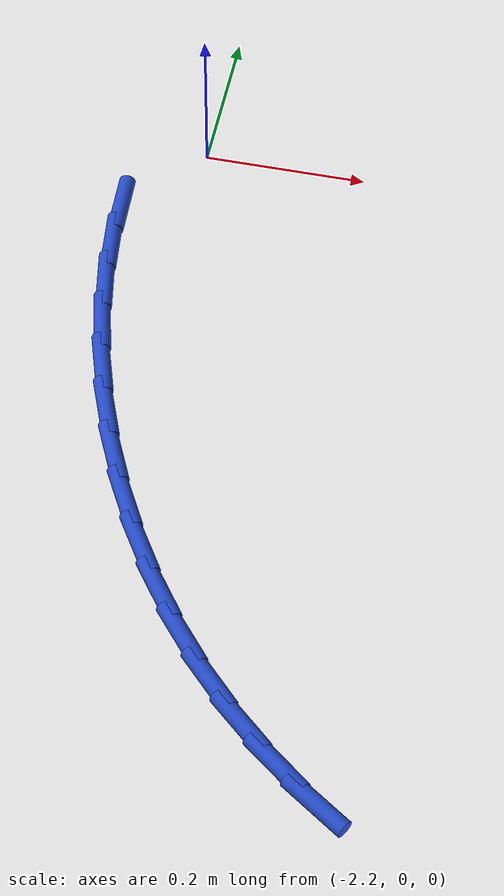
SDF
<sdf version="1.6">
 <world name="default">
  <model name="ground_plane">
   <static>1</static>
   <link name="link">
    <collision name="collision">
     <geometry><plane><normal>0 0 1</normal><size>100 100</size></plane></geometry>
     <surface><friction><ode><mu>100</mu><mu2>50</mu2></ode></friction></surface>
    </collision>
    <visual name="visual">
     <cast_shadows>0</cast_shadows>
     <geometry><plane><normal>0 0 1</normal><size>100 100</size></plane></geometry>
     <material>
      <script><uri>file://media/materials/scripts/gazebo.material</uri><name>Gazebo/WhiteGlow</name></script>
     </material>
    </visual>
   </link>
  </model>
  <model name="line">
   <link name="link_63">
    <pose>-2.2848982957113138 -0.10628251572030661 0.01 0 1.57 -1.5254522607305414</pose>
    <collision name="collision">
     <geometry><cylinder><radius>0.01</radius><length>0.08</length></cylinder></geometry>
    </collision>
    <visual name="visual">
     <material>
      <script><name>Gazebo/Blue</name><uri>file://media/materials/scripts/gazebo.material</uri></script>
     </material>
     <geometry><cylinder><radius>0.01</radius><length>0.08</length></cylinder></geometry>
    </visual>
   </link>
   <link name="link_64">
    <pose>-2.2821677250823136 -0.16646015706220527 0.01 0 1.57 -1.4539075155576662</pose>
    <collision name="collision">
     <geometry><cylinder><radius>0.01</radius><length>0.08</length></cylinder></geometry>
    </collision>
    <visual name="visual">
     <material>
      <script><name>Gazebo/Blue</name><uri>file://media/materials/scripts/gazebo.material</uri></script>
     </material>
     <geometry><cylinder><radius>0.01</radius><length>0.08</length></cylinder></geometry>
    </visual>
   </link>
   <link name="link_65">
    <pose>-2.275059396227622 -0.2269956828151566 0.01 0 1.57 -1.3856239007476459</pose>
    <collision name="collision">
     <geometry><cylinder><radius>0.01</radius><length>0.08</length></cylinder></geometry>
    </collision>
    <visual name="visual">
     <material>
      <script><name>Gazebo/Blue</name><uri>file://media/materials/scripts/gazebo.material</uri></script>
     </material>
     <geometry><cylinder><radius>0.01</radius><length>0.08</length></cylinder></geometry>
    </visual>
   </link>
   <link name="link_66">
    <pose>-2.263729057149864 -0.28748277028257113 0.01 0 1.57 -1.3197358555128753</pose>
    <collision name="collision">
     <geometry><cylinder><radius>0.01</radius><length>0.08</length></cylinder></geometry>
    </collision>
    <visual name="visual">
     <material>
      <script><name>Gazebo/Blue</name><uri>file://media/materials/scripts/gazebo.material</uri></script>
     </material>
     <geometry><cylinder><radius>0.01</radius><length>0.08</length></cylinder></geometry>
    </visual>
   </link>
   <link name="link_67">
    <pose>-2.248332455851666 -0.3475150967678565 0.01 0 1.57 -1.2553961133075244</pose>
    <collision name="collision">
     <geometry><cylinder><radius>0.01</radius><length>0.08</length></cylinder></geometry>
    </collision>
    <visual name="visual">
     <material>
      <script><name>Gazebo/Blue</name><uri>file://media/materials/scripts/gazebo.material</uri></script>
     </material>
     <geometry><cylinder><radius>0.01</radius><length>0.08</length></cylinder></geometry>
    </visual>
   </link>
   <link name="link_68">
    <pose>-2.2290253403356566 -0.4066863395744237 0.01 0 1.57 -1.1917744553068346</pose>
    <collision name="collision">
     <geometry><cylinder><radius>0.01</radius><length>0.08</length></cylinder></geometry>
    </collision>
    <visual name="visual">
     <material>
      <script><name>Gazebo/Blue</name><uri>file://media/materials/scripts/gazebo.material</uri></script>
     </material>
     <geometry><cylinder><radius>0.01</radius><length>0.08</length></cylinder></geometry>
    </visual>
   </link>
   <link name="link_69">
    <pose>-2.2059634586044625 -0.464590176005682 0.01 0 1.57 -1.1280505336954663</pose>
    <collision name="collision">
     <geometry><cylinder><radius>0.01</radius><length>0.08</length></cylinder></geometry>
    </collision>
    <visual name="visual">
     <material>
      <script><name>Gazebo/Blue</name><uri>file://media/materials/scripts/gazebo.material</uri></script>
     </material>
     <geometry><cylinder><radius>0.01</radius><length>0.08</length></cylinder></geometry>
    </visual>
   </link>
   <link name="link_70">
    <pose>-2.1793025586607104 -0.5208202833650417 0.01 0 1.57 -1.0634042625442939</pose>
    <collision name="collision">
     <geometry><cylinder><radius>0.01</radius><length>0.08</length></cylinder></geometry>
    </collision>
    <visual name="visual">
     <material>
      <script><name>Gazebo/Blue</name><uri>file://media/materials/scripts/gazebo.material</uri></script>
     </material>
     <geometry><cylinder><radius>0.01</radius><length>0.08</length></cylinder></geometry>
    </visual>
   </link>
   <link name="link_71">
    <pose>-2.149198388507028 -0.5749703389559109 0.01 0 1.57 -0.9970066914872332</pose>
    <collision name="collision">
     <geometry><cylinder><radius>0.01</radius><length>0.08</length></cylinder></geometry>
    </collision>
    <visual name="visual">
     <material>
      <script><name>Gazebo/Blue</name><uri>file://media/materials/scripts/gazebo.material</uri></script>
     </material>
     <geometry><cylinder><radius>0.01</radius><length>0.08</length></cylinder></geometry>
    </visual>
   </link>
   <link name="link_72">
    <pose>-2.115806696146042 -0.6266340200817003 0.01 0 1.57 -0.9280143464247921</pose>
    <collision name="collision">
     <geometry><cylinder><radius>0.01</radius><length>0.08</length></cylinder></geometry>
    </collision>
    <visual name="visual">
     <material>
      <script><name>Gazebo/Blue</name><uri>file://media/materials/scripts/gazebo.material</uri></script>
     </material>
     <geometry><cylinder><radius>0.01</radius><length>0.08</length></cylinder></geometry>
    </visual>
   </link>
   <link name="link_73">
    <pose>-2.07928322958038 -0.6754050040458195 0.01 0 1.57 -0.8555707265855401</pose>
    <collision name="collision">
     <geometry><cylinder><radius>0.01</radius><length>0.08</length></cylinder></geometry>
    </collision>
    <visual name="visual">
     <material>
      <script><name>Gazebo/Blue</name><uri>file://media/materials/scripts/gazebo.material</uri></script>
     </material>
     <geometry><cylinder><radius>0.01</radius><length>0.08</length></cylinder></geometry>
    </visual>
   </link>
   <link name="link_74">
    <pose>-2.0397837368126677 -0.7208769681516785 0.01 0 1.57 -0.7791672247594917</pose>
    <collision name="collision">
     <geometry><cylinder><radius>0.01</radius><length>0.08</length></cylinder></geometry>
    </collision>
    <visual name="visual">
     <material>
      <script><name>Gazebo/Blue</name><uri>file://media/materials/scripts/gazebo.material</uri></script>
     </material>
     <geometry><cylinder><radius>0.01</radius><length>0.08</length></cylinder></geometry>
    </visual>
   </link>
   <link name="link_75">
    <pose>-1.9974681376217713 -0.7626684942237199 0.01 0 1.57 -0.7034043481081477</pose>
    <collision name="collision">
     <geometry><cylinder><radius>0.01</radius><length>0.08</length></cylinder></geometry>
    </collision>
    <visual name="visual">
     <material>
      <script><name>Gazebo/Blue</name><uri>file://media/materials/scripts/gazebo.material</uri></script>
     </material>
     <geometry><cylinder><radius>0.01</radius><length>0.08</length></cylinder></geometry>
    </visual>
   </link>
   <link name="link_76">
    <pose>-1.9525567828840782 -0.8007589234975276 0.01 0 1.57 -0.6327055672607698</pose>
    <collision name="collision">
     <geometry><cylinder><radius>0.01</radius><length>0.08</length></cylinder></geometry>
    </collision>
    <visual name="visual">
     <material>
      <script><name>Gazebo/Blue</name><uri>file://media/materials/scripts/gazebo.material</uri></script>
     </material>
     <geometry><cylinder><radius>0.01</radius><length>0.08</length></cylinder></geometry>
    </visual>
   </link>
   <link name="link_77">
    <pose>-1.90531554571831 -0.8353993542677746 0.01 0 1.57 -0.5677798890585392</pose>
    <collision name="collision">
     <geometry><cylinder><radius>0.01</radius><length>0.08</length></cylinder></geometry>
    </collision>
    <visual name="visual">
     <material>
      <script><name>Gazebo/Blue</name><uri>file://media/materials/scripts/gazebo.material</uri></script>
     </material>
     <geometry><cylinder><radius>0.01</radius><length>0.08</length></cylinder></geometry>
    </visual>
   </link>
  </model>
 </world>
</sdf>
